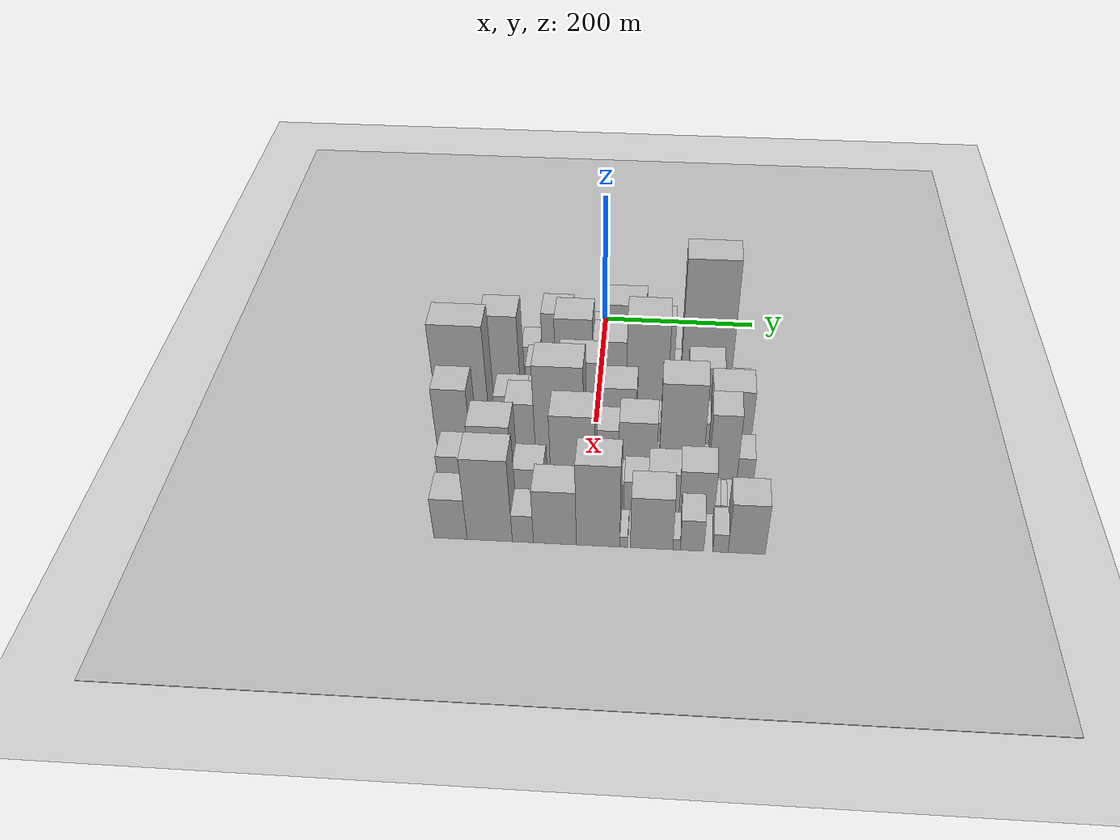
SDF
<sdf version="1.6">
 <world name="default">
  <include><name>ground_plane_1</name><uri>model://HANNAS_ground_plane</uri></include>
  <include>
   <name>ground_plane_2</name>
   <uri>model://HANNAS_ground_plane</uri>
   <pose>100 0 0  0 0 0</pose>
  </include>
  <model name="building_22">
   <static>1</static>
   <pose>100.0000 -153.1207 0 0.000000 0.000000 0.000000</pose>
   <link name="link">
    <pose>0 0 22.50 0 0 0</pose>
    <collision name="collision"><geometry><box><size>40.0000 25.2032 45.0000</size></box></geometry></collision>
    <visual name="visual">
     <cast_shadows>0</cast_shadows>
     <geometry><box><size>40.0000 25.2032 45.0000</size></box></geometry>
     <material>
      <script>
       <uri>model://HANNAS_wall/materials/scripts</uri>
       <uri>model://HANNAS_wall/materials/textures</uri>
       <name>vrc/HANNAS_wall</name>
      </script>
     </material>
    </visual>
   </link>
  </model>
  <model name="building_23">
   <static>1</static>
   <pose>100.0000 -120.6964 0 0.000000 0.000000 0.000000</pose>
   <link name="link">
    <pose>0 0 25.50 0 0 0</pose>
    <collision name="collision"><geometry><box><size>40.0000 27.6454 51.0000</size></box></geometry></collision>
    <visual name="visual">
     <cast_shadows>0</cast_shadows>
     <geometry><box><size>40.0000 27.6454 51.0000</size></box></geometry>
     <material>
      <script>
       <uri>model://HANNAS_wall/materials/scripts</uri>
       <uri>model://HANNAS_wall/materials/textures</uri>
       <name>vrc/HANNAS_wall</name>
      </script>
     </material>
    </visual>
   </link>
  </model>
  <model name="building_24">
   <static>1</static>
   <pose>100.0000 -88.8576 0 0.000000 0.000000 0.000000</pose>
   <link name="link">
    <pose>0 0 24.00 0 0 0</pose>
    <collision name="collision"><geometry><box><size>40.0000 24.0322 48.0000</size></box></geometry></collision>
    <visual name="visual">
     <cast_shadows>0</cast_shadows>
     <geometry><box><size>40.0000 24.0322 48.0000</size></box></geometry>
     <material>
      <script>
       <uri>model://HANNAS_wall/materials/scripts</uri>
       <uri>model://HANNAS_wall/materials/textures</uri>
       <name>vrc/HANNAS_wall</name>
      </script>
     </material>
    </visual>
   </link>
  </model>
  <model name="building_25">
   <static>1</static>
   <pose>100.0000 -54.4047 0 0.000000 0.000000 0.000000</pose>
   <link name="link">
    <pose>0 0 52.50 0 0 0</pose>
    <collision name="collision"><geometry><box><size>40.0000 38.8737 105.0000</size></box></geometry></collision>
    <visual name="visual">
     <cast_shadows>0</cast_shadows>
     <geometry><box><size>40.0000 38.8737 105.0000</size></box></geometry>
     <material>
      <script>
       <uri>model://HANNAS_wall/materials/scripts</uri>
       <uri>model://HANNAS_wall/materials/textures</uri>
       <name>vrc/HANNAS_wall</name>
      </script>
     </material>
    </visual>
   </link>
  </model>
  <model name="building_26">
   <static>1</static>
   <pose>100.0000 -12.9961 0 0.000000 0.000000 0.000000</pose>
   <link name="link">
    <pose>0 0 39.00 0 0 0</pose>
    <collision name="collision"><geometry><box><size>40.0000 43.9434 78.0000</size></box></geometry></collision>
    <visual name="visual">
     <cast_shadows>0</cast_shadows>
     <geometry><box><size>40.0000 43.9434 78.0000</size></box></geometry>
     <material>
      <script>
       <uri>model://HANNAS_wall/materials/scripts</uri>
       <uri>model://HANNAS_wall/materials/textures</uri>
       <name>vrc/HANNAS_wall</name>
      </script>
     </material>
    </visual>
   </link>
  </model>
  <model name="building_27">
   <static>1</static>
   <pose>100.0000 33.1813 0 0.000000 0.000000 0.000000</pose>
   <link name="link">
    <pose>0 0 61.50 0 0 0</pose>
    <collision name="collision"><geometry><box><size>40.0000 48.4115 123.0000</size></box></geometry></collision>
    <visual name="visual">
     <cast_shadows>0</cast_shadows>
     <geometry><box><size>40.0000 48.4115 123.0000</size></box></geometry>
     <material>
      <script>
       <uri>model://HANNAS_wall/materials/scripts</uri>
       <uri>model://HANNAS_wall/materials/textures</uri>
       <name>vrc/HANNAS_wall</name>
      </script>
     </material>
    </visual>
   </link>
  </model>
  <model name="building_28">
   <static>1</static>
   <pose>100.0000 79.0986 0 0.000000 0.000000 0.000000</pose>
   <link name="link">
    <pose>0 0 46.50 0 0 0</pose>
    <collision name="collision"><geometry><box><size>40.0000 31.4229 93.0000</size></box></geometry></collision>
    <visual name="visual">
     <cast_shadows>0</cast_shadows>
     <geometry><box><size>40.0000 31.4229 93.0000</size></box></geometry>
     <material>
      <script>
       <uri>model://HANNAS_wall/materials/scripts</uri>
       <uri>model://HANNAS_wall/materials/textures</uri>
       <name>vrc/HANNAS_wall</name>
      </script>
     </material>
    </visual>
   </link>
  </model>
  <model name="building_29">
   <static>1</static>
   <pose>100.0000 99.4468 0 0.000000 0.000000 0.000000</pose>
   <link name="link">
    <pose>0 0 10.50 0 0 0</pose>
    <collision name="collision"><geometry><box><size>40.0000 9.2736 21.0000</size></box></geometry></collision>
    <visual name="visual">
     <cast_shadows>0</cast_shadows>
     <geometry><box><size>40.0000 9.2736 21.0000</size></box></geometry>
     <material>
      <script>
       <uri>model://HANNAS_wall/materials/scripts</uri>
       <uri>model://HANNAS_wall/materials/textures</uri>
       <name>vrc/HANNAS_wall</name>
      </script>
     </material>
    </visual>
   </link>
  </model>
  <model name="building_30">
   <static>1</static>
   <pose>100.0000 136.3446 0 0.000000 0.000000 0.000000</pose>
   <link name="link">
    <pose>0 0 99.00 0 0 0</pose>
    <collision name="collision"><geometry><box><size>40.0000 64.5218 198.0000</size></box></geometry></collision>
    <visual name="visual">
     <cast_shadows>0</cast_shadows>
     <geometry><box><size>40.0000 64.5218 198.0000</size></box></geometry>
     <material>
      <script>
       <uri>model://HANNAS_wall/materials/scripts</uri>
       <uri>model://HANNAS_wall/materials/textures</uri>
       <name>vrc/HANNAS_wall</name>
      </script>
     </material>
    </visual>
   </link>
  </model>
  <model name="building_76">
   <static>1</static>
   <pose>155.0000 -153.2046 0 0.000000 0.000000 0.000000</pose>
   <link name="link">
    <pose>0 0 22.50 0 0 0</pose>
    <collision name="collision"><geometry><box><size>40.0000 25.9965 45.0000</size></box></geometry></collision>
    <visual name="visual">
     <cast_shadows>0</cast_shadows>
     <geometry><box><size>40.0000 25.9965 45.0000</size></box></geometry>
     <material>
      <script>
       <uri>model://HANNAS_wall/materials/scripts</uri>
       <uri>model://HANNAS_wall/materials/textures</uri>
       <name>vrc/HANNAS_wall</name>
      </script>
     </material>
    </visual>
   </link>
  </model>
  <model name="building_77">
   <static>1</static>
   <pose>155.0000 -118.0673 0 0.000000 0.000000 0.000000</pose>
   <link name="link">
    <pose>0 0 72.00 0 0 0</pose>
    <collision name="collision"><geometry><box><size>40.0000 44.2782 144.0000</size></box></geometry></collision>
    <visual name="visual">
     <cast_shadows>0</cast_shadows>
     <geometry><box><size>40.0000 44.2782 144.0000</size></box></geometry>
     <material>
      <script>
       <uri>model://HANNAS_wall/materials/scripts</uri>
       <uri>model://HANNAS_wall/materials/textures</uri>
       <name>vrc/HANNAS_wall</name>
      </script>
     </material>
    </visual>
   </link>
  </model>
  <model name="building_78">
   <static>1</static>
   <pose>155.0000 -92.2645 0 0.000000 0.000000 0.000000</pose>
   <link name="link">
    <pose>0 0 7.50 0 0 0</pose>
    <collision name="collision"><geometry><box><size>40.0000 7.3274 15.0000</size></box></geometry></collision>
    <visual name="visual">
     <cast_shadows>0</cast_shadows>
     <geometry><box><size>40.0000 7.3274 15.0000</size></box></geometry>
     <material>
      <script>
       <uri>model://HANNAS_wall/materials/scripts</uri>
       <uri>model://HANNAS_wall/materials/textures</uri>
       <name>vrc/HANNAS_wall</name>
      </script>
     </material>
    </visual>
   </link>
  </model>
  <model name="building_79">
   <static>1</static>
   <pose>155.0000 -69.9356 0 0.000000 0.000000 0.000000</pose>
   <link name="link">
    <pose>0 0 33.00 0 0 0</pose>
    <collision name="collision"><geometry><box><size>40.0000 37.3304 66.0000</size></box></geometry></collision>
    <visual name="visual">
     <cast_shadows>0</cast_shadows>
     <geometry><box><size>40.0000 37.3304 66.0000</size></box></geometry>
     <material>
      <script>
       <uri>model://HANNAS_wall/materials/scripts</uri>
       <uri>model://HANNAS_wall/materials/textures</uri>
       <name>vrc/HANNAS_wall</name>
      </script>
     </material>
    </visual>
   </link>
  </model>
  <model name="building_80">
   <static>1</static>
   <pose>155.0000 -28.3487 0 0.000000 0.000000 0.000000</pose>
   <link name="link">
    <pose>0 0 72.00 0 0 0</pose>
    <collision name="collision"><geometry><box><size>40.0000 45.8435 144.0000</size></box></geometry></collision>
    <visual name="visual">
     <cast_shadows>0</cast_shadows>
     <geometry><box><size>40.0000 45.8435 144.0000</size></box></geometry>
     <material>
      <script>
       <uri>model://HANNAS_wall/materials/scripts</uri>
       <uri>model://HANNAS_wall/materials/textures</uri>
       <name>vrc/HANNAS_wall</name>
      </script>
     </material>
    </visual>
   </link>
  </model>
  <model name="building_81">
   <static>1</static>
   <pose>155.0000 15.3930 0 0.000000 0.000000 0.000000</pose>
   <link name="link">
    <pose>0 0 55.50 0 0 0</pose>
    <collision name="collision"><geometry><box><size>40.0000 41.6398 111.0000</size></box></geometry></collision>
    <visual name="visual">
     <cast_shadows>0</cast_shadows>
     <geometry><box><size>40.0000 41.6398 111.0000</size></box></geometry>
     <material>
      <script>
       <uri>model://HANNAS_wall/materials/scripts</uri>
       <uri>model://HANNAS_wall/materials/textures</uri>
       <name>vrc/HANNAS_wall</name>
      </script>
     </material>
    </visual>
   </link>
  </model>
  <model name="building_82">
   <static>1</static>
   <pose>155.0000 61.9907 0 0.000000 0.000000 0.000000</pose>
   <link name="link">
    <pose>0 0 75.00 0 0 0</pose>
    <collision name="collision"><geometry><box><size>40.0000 51.5555 150.0000</size></box></geometry></collision>
    <visual name="visual">
     <cast_shadows>0</cast_shadows>
     <geometry><box><size>40.0000 51.5555 150.0000</size></box></geometry>
     <material>
      <script>
       <uri>model://HANNAS_wall/materials/scripts</uri>
       <uri>model://HANNAS_wall/materials/textures</uri>
       <name>vrc/HANNAS_wall</name>
      </script>
     </material>
    </visual>
   </link>
  </model>
  <model name="building_83">
   <static>1</static>
   <pose>155.0000 100.3819 0 0.000000 0.000000 0.000000</pose>
   <link name="link">
    <pose>0 0 7.50 0 0 0</pose>
    <collision name="collision"><geometry><box><size>40.0000 7.2269 15.0000</size></box></geometry></collision>
    <visual name="visual">
     <cast_shadows>0</cast_shadows>
     <geometry><box><size>40.0000 7.2269 15.0000</size></box></geometry>
     <material>
      <script>
       <uri>model://HANNAS_wall/materials/scripts</uri>
       <uri>model://HANNAS_wall/materials/textures</uri>
       <name>vrc/HANNAS_wall</name>
      </script>
     </material>
    </visual>
   </link>
  </model>
  <model name="building_84">
   <static>1</static>
   <pose>155.0000 108.1737 0 0.000000 0.000000 0.000000</pose>
   <link name="link">
    <pose>0 0 9.00 0 0 0</pose>
    <collision name="collision"><geometry><box><size>40.0000 8.3567 18.0000</size></box></geometry></collision>
    <visual name="visual">
     <cast_shadows>0</cast_shadows>
     <geometry><box><size>40.0000 8.3567 18.0000</size></box></geometry>
     <material>
      <script>
       <uri>model://HANNAS_wall/materials/scripts</uri>
       <uri>model://HANNAS_wall/materials/textures</uri>
       <name>vrc/HANNAS_wall</name>
      </script>
     </material>
    </visual>
   </link>
  </model>
  <model name="building_85">
   <static>1</static>
   <pose>155.0000 134.4168 0 0.000000 0.000000 0.000000</pose>
   <link name="link">
    <pose>0 0 37.50 0 0 0</pose>
    <collision name="collision"><geometry><box><size>40.0000 44.1296 75.0000</size></box></geometry></collision>
    <visual name="visual">
     <cast_shadows>0</cast_shadows>
     <geometry><box><size>40.0000 44.1296 75.0000</size></box></geometry>
     <material>
      <script>
       <uri>model://HANNAS_wall/materials/scripts</uri>
       <uri>model://HANNAS_wall/materials/textures</uri>
       <name>vrc/HANNAS_wall</name>
      </script>
     </material>
    </visual>
   </link>
  </model>
  <model name="building_86">
   <static>1</static>
   <pose>155.0000 161.0077 0 0.000000 0.000000 0.000000</pose>
   <link name="link">
    <pose>0 0 10.50 0 0 0</pose>
    <collision name="collision"><geometry><box><size>40.0000 9.0522 21.0000</size></box></geometry></collision>
    <visual name="visual">
     <cast_shadows>0</cast_shadows>
     <geometry><box><size>40.0000 9.0522 21.0000</size></box></geometry>
     <material>
      <script>
       <uri>model://HANNAS_wall/materials/scripts</uri>
       <uri>model://HANNAS_wall/materials/textures</uri>
       <name>vrc/HANNAS_wall</name>
      </script>
     </material>
    </visual>
   </link>
  </model>
  <model name="building_87">
   <static>1</static>
   <pose>155.0000 177.5610 0 0.000000 0.000000 0.000000</pose>
   <link name="link">
    <pose>0 0 21.00 0 0 0</pose>
    <collision name="collision"><geometry><box><size>40.0000 24.0544 42.0000</size></box></geometry></collision>
    <visual name="visual">
     <cast_shadows>0</cast_shadows>
     <geometry><box><size>40.0000 24.0544 42.0000</size></box></geometry>
     <material>
      <script>
       <uri>model://HANNAS_wall/materials/scripts</uri>
       <uri>model://HANNAS_wall/materials/textures</uri>
       <name>vrc/HANNAS_wall</name>
      </script>
     </material>
    </visual>
   </link>
  </model>
  <model name="building_132">
   <static>1</static>
   <pose>210.0000 -159.2584 0 0.000000 0.000000 0.000000</pose>
   <link name="link">
    <pose>0 0 87.00 0 0 0</pose>
    <collision name="collision"><geometry><box><size>40.0000 63.2262 174.0000</size></box></geometry></collision>
    <visual name="visual">
     <cast_shadows>0</cast_shadows>
     <geometry><box><size>40.0000 63.2262 174.0000</size></box></geometry>
     <material>
      <script>
       <uri>model://HANNAS_wall/materials/scripts</uri>
       <uri>model://HANNAS_wall/materials/textures</uri>
       <name>vrc/HANNAS_wall</name>
      </script>
     </material>
    </visual>
   </link>
  </model>
  <model name="building_133">
   <static>1</static>
   <pose>210.0000 -124.3392 0 0.000000 0.000000 0.000000</pose>
   <link name="link">
    <pose>0 0 7.50 0 0 0</pose>
    <collision name="collision"><geometry><box><size>40.0000 6.6121 15.0000</size></box></geometry></collision>
    <visual name="visual">
     <cast_shadows>0</cast_shadows>
     <geometry><box><size>40.0000 6.6121 15.0000</size></box></geometry>
     <material>
      <script>
       <uri>model://HANNAS_wall/materials/scripts</uri>
       <uri>model://HANNAS_wall/materials/textures</uri>
       <name>vrc/HANNAS_wall</name>
      </script>
     </material>
    </visual>
   </link>
  </model>
  <model name="building_134">
   <static>1</static>
   <pose>210.0000 -101.3615 0 0.000000 0.000000 0.000000</pose>
   <link name="link">
    <pose>0 0 33.00 0 0 0</pose>
    <collision name="collision"><geometry><box><size>40.0000 39.3432 66.0000</size></box></geometry></collision>
    <visual name="visual">
     <cast_shadows>0</cast_shadows>
     <geometry><box><size>40.0000 39.3432 66.0000</size></box></geometry>
     <material>
      <script>
       <uri>model://HANNAS_wall/materials/scripts</uri>
       <uri>model://HANNAS_wall/materials/textures</uri>
       <name>vrc/HANNAS_wall</name>
      </script>
     </material>
    </visual>
   </link>
  </model>
  <model name="building_135">
   <static>1</static>
   <pose>210.0000 -62.0050 0 0.000000 0.000000 0.000000</pose>
   <link name="link">
    <pose>0 0 33.00 0 0 0</pose>
    <collision name="collision"><geometry><box><size>40.0000 39.3699 66.0000</size></box></geometry></collision>
    <visual name="visual">
     <cast_shadows>0</cast_shadows>
     <geometry><box><size>40.0000 39.3699 66.0000</size></box></geometry>
     <material>
      <script>
       <uri>model://HANNAS_wall/materials/scripts</uri>
       <uri>model://HANNAS_wall/materials/textures</uri>
       <name>vrc/HANNAS_wall</name>
      </script>
     </material>
    </visual>
   </link>
  </model>
  <model name="building_136">
   <static>1</static>
   <pose>210.0000 -18.7586 0 0.000000 0.000000 0.000000</pose>
   <link name="link">
    <pose>0 0 63.00 0 0 0</pose>
    <collision name="collision"><geometry><box><size>40.0000 47.1230 126.0000</size></box></geometry></collision>
    <visual name="visual">
     <cast_shadows>0</cast_shadows>
     <geometry><box><size>40.0000 47.1230 126.0000</size></box></geometry>
     <material>
      <script>
       <uri>model://HANNAS_wall/materials/scripts</uri>
       <uri>model://HANNAS_wall/materials/textures</uri>
       <name>vrc/HANNAS_wall</name>
      </script>
     </material>
    </visual>
   </link>
  </model>
  <model name="building_137">
   <static>1</static>
   <pose>210.0000 27.7567 0 0.000000 0.000000 0.000000</pose>
   <link name="link">
    <pose>0 0 43.50 0 0 0</pose>
    <collision name="collision"><geometry><box><size>40.0000 45.9074 87.0000</size></box></geometry></collision>
    <visual name="visual">
     <cast_shadows>0</cast_shadows>
     <geometry><box><size>40.0000 45.9074 87.0000</size></box></geometry>
     <material>
      <script>
       <uri>model://HANNAS_wall/materials/scripts</uri>
       <uri>model://HANNAS_wall/materials/textures</uri>
       <name>vrc/HANNAS_wall</name>
      </script>
     </material>
    </visual>
   </link>
  </model>
  <model name="building_138">
   <static>1</static>
   <pose>210.0000 64.1572 0 0.000000 0.000000 0.000000</pose>
   <link name="link">
    <pose>0 0 10.50 0 0 0</pose>
    <collision name="collision"><geometry><box><size>40.0000 8.8937 21.0000</size></box></geometry></collision>
    <visual name="visual">
     <cast_shadows>0</cast_shadows>
     <geometry><box><size>40.0000 8.8937 21.0000</size></box></geometry>
     <material>
      <script>
       <uri>model://HANNAS_wall/materials/scripts</uri>
       <uri>model://HANNAS_wall/materials/textures</uri>
       <name>vrc/HANNAS_wall</name>
      </script>
     </material>
    </visual>
   </link>
  </model>
  <model name="building_139">
   <static>1</static>
   <pose>210.0000 78.2264 0 0.000000 0.000000 0.000000</pose>
   <link name="link">
    <pose>0 0 16.50 0 0 0</pose>
    <collision name="collision"><geometry><box><size>40.0000 19.2447 33.0000</size></box></geometry></collision>
    <visual name="visual">
     <cast_shadows>0</cast_shadows>
     <geometry><box><size>40.0000 19.2447 33.0000</size></box></geometry>
     <material>
      <script>
       <uri>model://HANNAS_wall/materials/scripts</uri>
       <uri>model://HANNAS_wall/materials/textures</uri>
       <name>vrc/HANNAS_wall</name>
      </script>
     </material>
    </visual>
   </link>
  </model>
  <model name="building_140">
   <static>1</static>
   <pose>210.0000 104.5508 0 0.000000 0.000000 0.000000</pose>
   <link name="link">
    <pose>0 0 49.50 0 0 0</pose>
    <collision name="collision"><geometry><box><size>40.0000 33.4042 99.0000</size></box></geometry></collision>
    <visual name="visual">
     <cast_shadows>0</cast_shadows>
     <geometry><box><size>40.0000 33.4042 99.0000</size></box></geometry>
     <material>
      <script>
       <uri>model://HANNAS_wall/materials/scripts</uri>
       <uri>model://HANNAS_wall/materials/textures</uri>
       <name>vrc/HANNAS_wall</name>
      </script>
     </material>
    </visual>
   </link>
  </model>
  <model name="building_141">
   <static>1</static>
   <pose>210.0000 130.7747 0 0.000000 0.000000 0.000000</pose>
   <link name="link">
    <pose>0 0 18.00 0 0 0</pose>
    <collision name="collision"><geometry><box><size>40.0000 19.0436 36.0000</size></box></geometry></collision>
    <visual name="visual">
     <cast_shadows>0</cast_shadows>
     <geometry><box><size>40.0000 19.0436 36.0000</size></box></geometry>
     <material>
      <script>
       <uri>model://HANNAS_wall/materials/scripts</uri>
       <uri>model://HANNAS_wall/materials/textures</uri>
       <name>vrc/HANNAS_wall</name>
      </script>
     </material>
    </visual>
   </link>
  </model>
  <model name="building_142">
   <static>1</static>
   <pose>210.0000 165.1754 0 0.000000 0.000000 0.000000</pose>
   <link name="link">
    <pose>0 0 45.00 0 0 0</pose>
    <collision name="collision"><geometry><box><size>40.0000 49.7576 90.0000</size></box></geometry></collision>
    <visual name="visual">
     <cast_shadows>0</cast_shadows>
     <geometry><box><size>40.0000 49.7576 90.0000</size></box></geometry>
     <material>
      <script>
       <uri>model://HANNAS_wall/materials/scripts</uri>
       <uri>model://HANNAS_wall/materials/textures</uri>
       <name>vrc/HANNAS_wall</name>
      </script>
     </material>
    </visual>
   </link>
  </model>
  <model name="building_182">
   <static>1</static>
   <pose>265.0000 -161.2198 0 0.000000 0.000000 0.000000</pose>
   <link name="link">
    <pose>0 0 63.00 0 0 0</pose>
    <collision name="collision"><geometry><box><size>40.0000 40.2865 126.0000</size></box></geometry></collision>
    <visual name="visual">
     <cast_shadows>0</cast_shadows>
     <geometry><box><size>40.0000 40.2865 126.0000</size></box></geometry>
     <material>
      <script>
       <uri>model://HANNAS_wall/materials/scripts</uri>
       <uri>model://HANNAS_wall/materials/textures</uri>
       <name>vrc/HANNAS_wall</name>
      </script>
     </material>
    </visual>
   </link>
  </model>
  <model name="building_183">
   <static>1</static>
   <pose>265.0000 -115.8150 0 0.000000 0.000000 0.000000</pose>
   <link name="link">
    <pose>0 0 34.50 0 0 0</pose>
    <collision name="collision"><geometry><box><size>40.0000 34.5230 69.0000</size></box></geometry></collision>
    <visual name="visual">
     <cast_shadows>0</cast_shadows>
     <geometry><box><size>40.0000 34.5230 69.0000</size></box></geometry>
     <material>
      <script>
       <uri>model://HANNAS_wall/materials/scripts</uri>
       <uri>model://HANNAS_wall/materials/textures</uri>
       <name>vrc/HANNAS_wall</name>
      </script>
     </material>
    </visual>
   </link>
  </model>
  <model name="building_184">
   <static>1</static>
   <pose>265.0000 -81.9144 0 0.000000 0.000000 0.000000</pose>
   <link name="link">
    <pose>0 0 54.00 0 0 0</pose>
    <collision name="collision"><geometry><box><size>40.0000 33.2782 108.0000</size></box></geometry></collision>
    <visual name="visual">
     <cast_shadows>0</cast_shadows>
     <geometry><box><size>40.0000 33.2782 108.0000</size></box></geometry>
     <material>
      <script>
       <uri>model://HANNAS_wall/materials/scripts</uri>
       <uri>model://HANNAS_wall/materials/textures</uri>
       <name>vrc/HANNAS_wall</name>
      </script>
     </material>
    </visual>
   </link>
  </model>
  <model name="building_185">
   <static>1</static>
   <pose>265.0000 -36.7453 0 0.000000 0.000000 0.000000</pose>
   <link name="link">
    <pose>0 0 84.00 0 0 0</pose>
    <collision name="collision"><geometry><box><size>40.0000 57.0600 168.0000</size></box></geometry></collision>
    <visual name="visual">
     <cast_shadows>0</cast_shadows>
     <geometry><box><size>40.0000 57.0600 168.0000</size></box></geometry>
     <material>
      <script>
       <uri>model://HANNAS_wall/materials/scripts</uri>
       <uri>model://HANNAS_wall/materials/textures</uri>
       <name>vrc/HANNAS_wall</name>
      </script>
     </material>
    </visual>
   </link>
  </model>
  <model name="building_186">
   <static>1</static>
   <pose>265.0000 12.2300 0 0.000000 0.000000 0.000000</pose>
   <link name="link">
    <pose>0 0 36.00 0 0 0</pose>
    <collision name="collision"><geometry><box><size>40.0000 40.8906 72.0000</size></box></geometry></collision>
    <visual name="visual">
     <cast_shadows>0</cast_shadows>
     <geometry><box><size>40.0000 40.8906 72.0000</size></box></geometry>
     <material>
      <script>
       <uri>model://HANNAS_wall/materials/scripts</uri>
       <uri>model://HANNAS_wall/materials/textures</uri>
       <name>vrc/HANNAS_wall</name>
      </script>
     </material>
    </visual>
   </link>
  </model>
  <model name="building_187">
   <static>1</static>
   <pose>265.0000 54.8829 0 0.000000 0.000000 0.000000</pose>
   <link name="link">
    <pose>0 0 43.50 0 0 0</pose>
    <collision name="collision"><geometry><box><size>40.0000 44.4151 87.0000</size></box></geometry></collision>
    <visual name="visual">
     <cast_shadows>0</cast_shadows>
     <geometry><box><size>40.0000 44.4151 87.0000</size></box></geometry>
     <material>
      <script>
       <uri>model://HANNAS_wall/materials/scripts</uri>
       <uri>model://HANNAS_wall/materials/textures</uri>
       <name>vrc/HANNAS_wall</name>
      </script>
     </material>
    </visual>
   </link>
  </model>
  <model name="building_188">
   <static>1</static>
   <pose>265.0000 105.8932 0 0.000000 0.000000 0.000000</pose>
   <link name="link">
    <pose>0 0 75.00 0 0 0</pose>
    <collision name="collision"><geometry><box><size>40.0000 51.6055 150.0000</size></box></geometry></collision>
    <visual name="visual">
     <cast_shadows>0</cast_shadows>
     <geometry><box><size>40.0000 51.6055 150.0000</size></box></geometry>
     <material>
      <script>
       <uri>model://HANNAS_wall/materials/scripts</uri>
       <uri>model://HANNAS_wall/materials/textures</uri>
       <name>vrc/HANNAS_wall</name>
      </script>
     </material>
    </visual>
   </link>
  </model>
  <model name="building_189">
   <static>1</static>
   <pose>265.0000 155.6206 0 0.000000 0.000000 0.000000</pose>
   <link name="link">
    <pose>0 0 52.50 0 0 0</pose>
    <collision name="collision"><geometry><box><size>40.0000 33.8493 105.0000</size></box></geometry></collision>
    <visual name="visual">
     <cast_shadows>0</cast_shadows>
     <geometry><box><size>40.0000 33.8493 105.0000</size></box></geometry>
     <material>
      <script>
       <uri>model://HANNAS_wall/materials/scripts</uri>
       <uri>model://HANNAS_wall/materials/textures</uri>
       <name>vrc/HANNAS_wall</name>
      </script>
     </material>
    </visual>
   </link>
  </model>
  <model name="building_190">
   <static>1</static>
   <pose>265.0000 182.4760 0 0.000000 0.000000 0.000000</pose>
   <link name="link">
    <pose>0 0 18.00 0 0 0</pose>
    <collision name="collision"><geometry><box><size>40.0000 19.8614 36.0000</size></box></geometry></collision>
    <visual name="visual">
     <cast_shadows>0</cast_shadows>
     <geometry><box><size>40.0000 19.8614 36.0000</size></box></geometry>
     <material>
      <script>
       <uri>model://HANNAS_wall/materials/scripts</uri>
       <uri>model://HANNAS_wall/materials/textures</uri>
       <name>vrc/HANNAS_wall</name>
      </script>
     </material>
    </visual>
   </link>
  </model>
  <model name="building_236">
   <static>1</static>
   <pose>320.0000 -151.9334 0 0.000000 0.000000 0.000000</pose>
   <link name="link">
    <pose>0 0 37.50 0 0 0</pose>
    <collision name="collision"><geometry><box><size>40.0000 37.9646 75.0000</size></box></geometry></collision>
    <visual name="visual">
     <cast_shadows>0</cast_shadows>
     <geometry><box><size>40.0000 37.9646 75.0000</size></box></geometry>
     <material>
      <script>
       <uri>model://HANNAS_wall/materials/scripts</uri>
       <uri>model://HANNAS_wall/materials/textures</uri>
       <name>vrc/HANNAS_wall</name>
      </script>
     </material>
    </visual>
   </link>
  </model>
  <model name="building_237">
   <static>1</static>
   <pose>320.0000 -109.2158 0 0.000000 0.000000 0.000000</pose>
   <link name="link">
    <pose>0 0 63.00 0 0 0</pose>
    <collision name="collision"><geometry><box><size>40.0000 47.4704 126.0000</size></box></geometry></collision>
    <visual name="visual">
     <cast_shadows>0</cast_shadows>
     <geometry><box><size>40.0000 47.4704 126.0000</size></box></geometry>
     <material>
      <script>
       <uri>model://HANNAS_wall/materials/scripts</uri>
       <uri>model://HANNAS_wall/materials/textures</uri>
       <name>vrc/HANNAS_wall</name>
      </script>
     </material>
    </visual>
   </link>
  </model>
  <model name="building_238">
   <static>1</static>
   <pose>320.0000 -68.0111 0 0.000000 0.000000 0.000000</pose>
   <link name="link">
    <pose>0 0 30.00 0 0 0</pose>
    <collision name="collision"><geometry><box><size>40.0000 34.9391 60.0000</size></box></geometry></collision>
    <visual name="visual">
     <cast_shadows>0</cast_shadows>
     <geometry><box><size>40.0000 34.9391 60.0000</size></box></geometry>
     <material>
      <script>
       <uri>model://HANNAS_wall/materials/scripts</uri>
       <uri>model://HANNAS_wall/materials/textures</uri>
       <name>vrc/HANNAS_wall</name>
      </script>
     </material>
    </visual>
   </link>
  </model>
  <model name="building_239">
   <static>1</static>
   <pose>320.0000 -16.4041 0 0.000000 0.000000 0.000000</pose>
   <link name="link">
    <pose>0 0 73.50 0 0 0</pose>
    <collision name="collision"><geometry><box><size>40.0000 50.2748 147.0000</size></box></geometry></collision>
    <visual name="visual">
     <cast_shadows>0</cast_shadows>
     <geometry><box><size>40.0000 50.2748 147.0000</size></box></geometry>
     <material>
      <script>
       <uri>model://HANNAS_wall/materials/scripts</uri>
       <uri>model://HANNAS_wall/materials/textures</uri>
       <name>vrc/HANNAS_wall</name>
      </script>
     </material>
    </visual>
   </link>
  </model>
  <model name="building_240">
   <static>1</static>
   <pose>320.0000 29.5128 0 0.000000 0.000000 0.000000</pose>
   <link name="link">
    <pose>0 0 21.00 0 0 0</pose>
    <collision name="collision"><geometry><box><size>40.0000 23.5590 42.0000</size></box></geometry></collision>
    <visual name="visual">
     <cast_shadows>0</cast_shadows>
     <geometry><box><size>40.0000 23.5590 42.0000</size></box></geometry>
     <material>
      <script>
       <uri>model://HANNAS_wall/materials/scripts</uri>
       <uri>model://HANNAS_wall/materials/textures</uri>
       <name>vrc/HANNAS_wall</name>
      </script>
     </material>
    </visual>
   </link>
  </model>
  <model name="building_241">
   <static>1</static>
   <pose>320.0000 55.0955 0 0.000000 0.000000 0.000000</pose>
   <link name="link">
    <pose>0 0 24.00 0 0 0</pose>
    <collision name="collision"><geometry><box><size>40.0000 27.6066 48.0000</size></box></geometry></collision>
    <visual name="visual">
     <cast_shadows>0</cast_shadows>
     <geometry><box><size>40.0000 27.6066 48.0000</size></box></geometry>
     <material>
      <script>
       <uri>model://HANNAS_wall/materials/scripts</uri>
       <uri>model://HANNAS_wall/materials/textures</uri>
       <name>vrc/HANNAS_wall</name>
      </script>
     </material>
    </visual>
   </link>
  </model>
  <model name="building_242">
   <static>1</static>
   <pose>320.0000 86.9683 0 0.000000 0.000000 0.000000</pose>
   <link name="link">
    <pose>0 0 31.50 0 0 0</pose>
    <collision name="collision"><geometry><box><size>40.0000 36.1390 63.0000</size></box></geometry></collision>
    <visual name="visual">
     <cast_shadows>0</cast_shadows>
     <geometry><box><size>40.0000 36.1390 63.0000</size></box></geometry>
     <material>
      <script>
       <uri>model://HANNAS_wall/materials/scripts</uri>
       <uri>model://HANNAS_wall/materials/textures</uri>
       <name>vrc/HANNAS_wall</name>
      </script>
     </material>
    </visual>
   </link>
  </model>
  <model name="building_243">
   <static>1</static>
   <pose>320.0000 125.2931 0 0.000000 0.000000 0.000000</pose>
   <link name="link">
    <pose>0 0 34.50 0 0 0</pose>
    <collision name="collision"><geometry><box><size>40.0000 40.5105 69.0000</size></box></geometry></collision>
    <visual name="visual">
     <cast_shadows>0</cast_shadows>
     <geometry><box><size>40.0000 40.5105 69.0000</size></box></geometry>
     <material>
      <script>
       <uri>model://HANNAS_wall/materials/scripts</uri>
       <uri>model://HANNAS_wall/materials/textures</uri>
       <name>vrc/HANNAS_wall</name>
      </script>
     </material>
    </visual>
   </link>
  </model>
  <model name="building_244">
   <static>1</static>
   <pose>320.0000 148.9140 0 0.000000 0.000000 0.000000</pose>
   <link name="link">
    <pose>0 0 7.50 0 0 0</pose>
    <collision name="collision"><geometry><box><size>40.0000 6.7314 15.0000</size></box></geometry></collision>
    <visual name="visual">
     <cast_shadows>0</cast_shadows>
     <geometry><box><size>40.0000 6.7314 15.0000</size></box></geometry>
     <material>
      <script>
       <uri>model://HANNAS_wall/materials/scripts</uri>
       <uri>model://HANNAS_wall/materials/textures</uri>
       <name>vrc/HANNAS_wall</name>
      </script>
     </material>
    </visual>
   </link>
  </model>
  <model name="building_245">
   <static>1</static>
   <pose>320.0000 155.8919 0 0.000000 0.000000 0.000000</pose>
   <link name="link">
    <pose>0 0 7.50 0 0 0</pose>
    <collision name="collision"><geometry><box><size>40.0000 7.2243 15.0000</size></box></geometry></collision>
    <visual name="visual">
     <cast_shadows>0</cast_shadows>
     <geometry><box><size>40.0000 7.2243 15.0000</size></box></geometry>
     <material>
      <script>
       <uri>model://HANNAS_wall/materials/scripts</uri>
       <uri>model://HANNAS_wall/materials/textures</uri>
       <name>vrc/HANNAS_wall</name>
      </script>
     </material>
    </visual>
   </link>
  </model>
  <model name="building_284">
   <static>1</static>
   <pose>375.0000 -150.6956 0 0.000000 0.000000 0.000000</pose>
   <link name="link">
    <pose>0 0 33.00 0 0 0</pose>
    <collision name="collision"><geometry><box><size>40.0000 37.6122 66.0000</size></box></geometry></collision>
    <visual name="visual">
     <cast_shadows>0</cast_shadows>
     <geometry><box><size>40.0000 37.6122 66.0000</size></box></geometry>
     <material>
      <script>
       <uri>model://HANNAS_wall/materials/scripts</uri>
       <uri>model://HANNAS_wall/materials/textures</uri>
       <name>vrc/HANNAS_wall</name>
      </script>
     </material>
    </visual>
   </link>
  </model>
  <model name="building_285">
   <static>1</static>
   <pose>375.0000 -106.3367 0 0.000000 0.000000 0.000000</pose>
   <link name="link">
    <pose>0 0 66.00 0 0 0</pose>
    <collision name="collision"><geometry><box><size>40.0000 51.1057 132.0000</size></box></geometry></collision>
    <visual name="visual">
     <cast_shadows>0</cast_shadows>
     <geometry><box><size>40.0000 51.1057 132.0000</size></box></geometry>
     <material>
      <script>
       <uri>model://HANNAS_wall/materials/scripts</uri>
       <uri>model://HANNAS_wall/materials/textures</uri>
       <name>vrc/HANNAS_wall</name>
      </script>
     </material>
    </visual>
   </link>
  </model>
  <model name="building_286">
   <static>1</static>
   <pose>375.0000 -68.9244 0 0.000000 0.000000 0.000000</pose>
   <link name="link">
    <pose>0 0 22.50 0 0 0</pose>
    <collision name="collision"><geometry><box><size>40.0000 23.7188 45.0000</size></box></geometry></collision>
    <visual name="visual">
     <cast_shadows>0</cast_shadows>
     <geometry><box><size>40.0000 23.7188 45.0000</size></box></geometry>
     <material>
      <script>
       <uri>model://HANNAS_wall/materials/scripts</uri>
       <uri>model://HANNAS_wall/materials/textures</uri>
       <name>vrc/HANNAS_wall</name>
      </script>
     </material>
    </visual>
   </link>
  </model>
  <model name="building_287">
   <static>1</static>
   <pose>375.0000 -32.9966 0 0.000000 0.000000 0.000000</pose>
   <link name="link">
    <pose>0 0 43.50 0 0 0</pose>
    <collision name="collision"><geometry><box><size>40.0000 48.1368 87.0000</size></box></geometry></collision>
    <visual name="visual">
     <cast_shadows>0</cast_shadows>
     <geometry><box><size>40.0000 48.1368 87.0000</size></box></geometry>
     <material>
      <script>
       <uri>model://HANNAS_wall/materials/scripts</uri>
       <uri>model://HANNAS_wall/materials/textures</uri>
       <name>vrc/HANNAS_wall</name>
      </script>
     </material>
    </visual>
   </link>
  </model>
  <model name="building_288">
   <static>1</static>
   <pose>375.0000 15.4091 0 0.000000 0.000000 0.000000</pose>
   <link name="link">
    <pose>0 0 66.00 0 0 0</pose>
    <collision name="collision"><geometry><box><size>40.0000 48.6747 132.0000</size></box></geometry></collision>
    <visual name="visual">
     <cast_shadows>0</cast_shadows>
     <geometry><box><size>40.0000 48.6747 132.0000</size></box></geometry>
     <material>
      <script>
       <uri>model://HANNAS_wall/materials/scripts</uri>
       <uri>model://HANNAS_wall/materials/textures</uri>
       <name>vrc/HANNAS_wall</name>
      </script>
     </material>
    </visual>
   </link>
  </model>
  <model name="building_289">
   <static>1</static>
   <pose>375.0000 44.0986 0 0.000000 0.000000 0.000000</pose>
   <link name="link">
    <pose>0 0 9.00 0 0 0</pose>
    <collision name="collision"><geometry><box><size>40.0000 8.7042 18.0000</size></box></geometry></collision>
    <visual name="visual">
     <cast_shadows>0</cast_shadows>
     <geometry><box><size>40.0000 8.7042 18.0000</size></box></geometry>
     <material>
      <script>
       <uri>model://HANNAS_wall/materials/scripts</uri>
       <uri>model://HANNAS_wall/materials/textures</uri>
       <name>vrc/HANNAS_wall</name>
      </script>
     </material>
    </visual>
   </link>
  </model>
  <model name="building_290">
   <static>1</static>
   <pose>375.0000 75.1165 0 0.000000 0.000000 0.000000</pose>
   <link name="link">
    <pose>0 0 42.00 0 0 0</pose>
    <collision name="collision"><geometry><box><size>40.0000 47.3317 84.0000</size></box></geometry></collision>
    <visual name="visual">
     <cast_shadows>0</cast_shadows>
     <geometry><box><size>40.0000 47.3317 84.0000</size></box></geometry>
     <material>
      <script>
       <uri>model://HANNAS_wall/materials/scripts</uri>
       <uri>model://HANNAS_wall/materials/textures</uri>
       <name>vrc/HANNAS_wall</name>
      </script>
     </material>
    </visual>
   </link>
  </model>
  <model name="building_291">
   <static>1</static>
   <pose>375.0000 102.8870 0 0.000000 0.000000 0.000000</pose>
   <link name="link">
    <pose>0 0 9.00 0 0 0</pose>
    <collision name="collision"><geometry><box><size>40.0000 8.2093 18.0000</size></box></geometry></collision>
    <visual name="visual">
     <cast_shadows>0</cast_shadows>
     <geometry><box><size>40.0000 8.2093 18.0000</size></box></geometry>
     <material>
      <script>
       <uri>model://HANNAS_wall/materials/scripts</uri>
       <uri>model://HANNAS_wall/materials/textures</uri>
       <name>vrc/HANNAS_wall</name>
      </script>
     </material>
    </visual>
   </link>
  </model>
  <model name="building_292">
   <static>1</static>
   <pose>375.0000 120.1251 0 0.000000 0.000000 0.000000</pose>
   <link name="link">
    <pose>0 0 25.50 0 0 0</pose>
    <collision name="collision"><geometry><box><size>40.0000 26.2668 51.0000</size></box></geometry></collision>
    <visual name="visual">
     <cast_shadows>0</cast_shadows>
     <geometry><box><size>40.0000 26.2668 51.0000</size></box></geometry>
     <material>
      <script>
       <uri>model://HANNAS_wall/materials/scripts</uri>
       <uri>model://HANNAS_wall/materials/textures</uri>
       <name>vrc/HANNAS_wall</name>
      </script>
     </material>
    </visual>
   </link>
  </model>
  <model name="building_293">
   <static>1</static>
   <pose>375.0000 151.7011 0 0.000000 0.000000 0.000000</pose>
   <link name="link">
    <pose>0 0 15.00 0 0 0</pose>
    <collision name="collision"><geometry><box><size>40.0000 16.8851 30.0000</size></box></geometry></collision>
    <visual name="visual">
     <cast_shadows>0</cast_shadows>
     <geometry><box><size>40.0000 16.8851 30.0000</size></box></geometry>
     <material>
      <script>
       <uri>model://HANNAS_wall/materials/scripts</uri>
       <uri>model://HANNAS_wall/materials/textures</uri>
       <name>vrc/HANNAS_wall</name>
      </script>
     </material>
    </visual>
   </link>
  </model>
  <model name="building_294">
   <static>1</static>
   <pose>375.0000 180.6721 0 0.000000 0.000000 0.000000</pose>
   <link name="link">
    <pose>0 0 40.50 0 0 0</pose>
    <collision name="collision"><geometry><box><size>40.0000 41.0569 81.0000</size></box></geometry></collision>
    <visual name="visual">
     <cast_shadows>0</cast_shadows>
     <geometry><box><size>40.0000 41.0569 81.0000</size></box></geometry>
     <material>
      <script>
       <uri>model://HANNAS_wall/materials/scripts</uri>
       <uri>model://HANNAS_wall/materials/textures</uri>
       <name>vrc/HANNAS_wall</name>
      </script>
     </material>
    </visual>
   </link>
  </model>
 </world>
</sdf>
